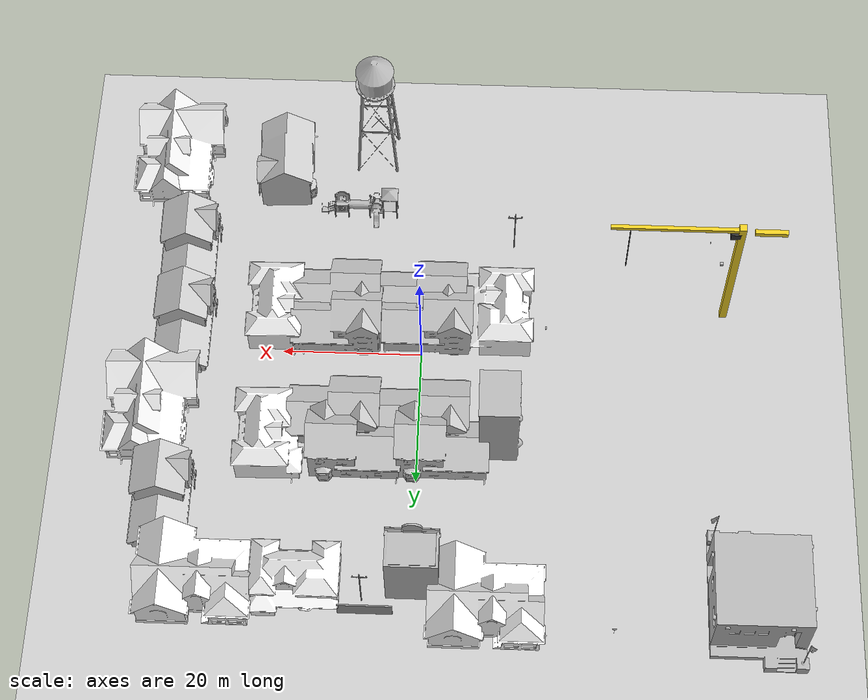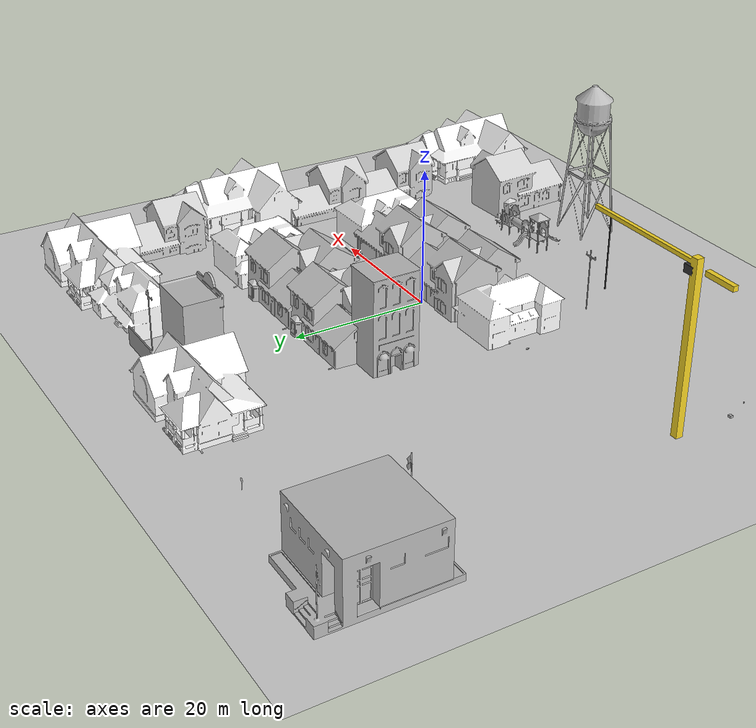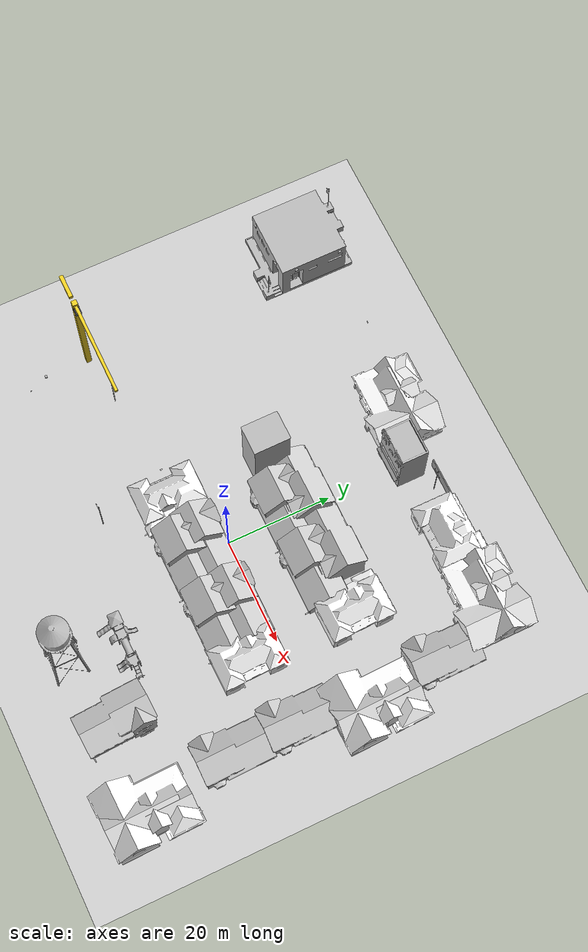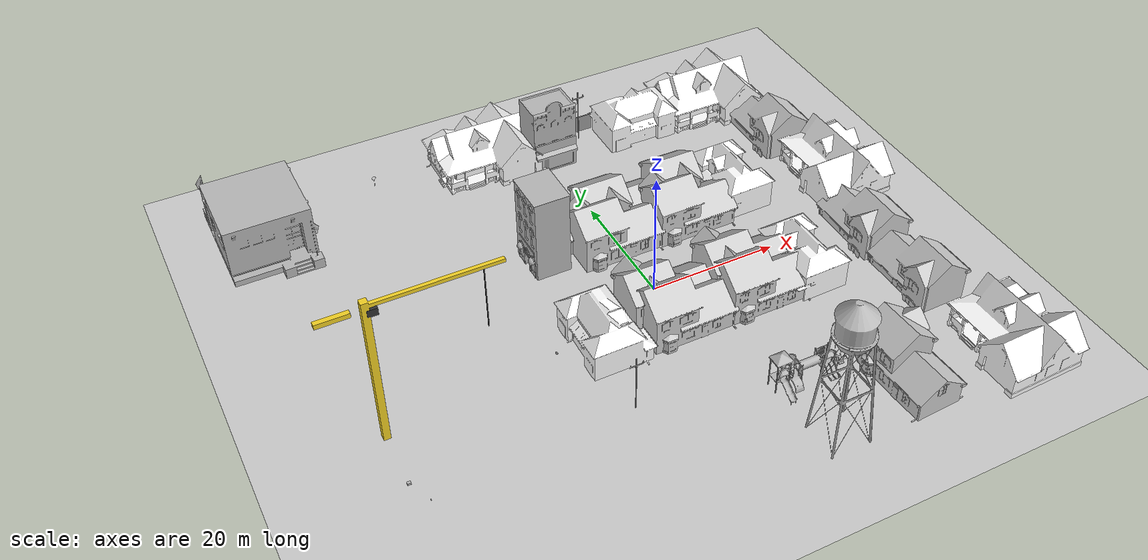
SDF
<sdf version="1.6">
 <world name="default">
  <light name="sun" type="directional">
   <pose>0 0 10 0 -0 0</pose>
   <diffuse>0.8 0.8 0.8 1</diffuse>
   <specular>0.2 0.2 0.2 1</specular>
   <attenuation>
    <range>1000</range>
    <constant>0.9</constant>
    <linear>0.01</linear>
    <quadratic>0.001</quadratic>
   </attenuation>
   <direction>-0.5 0.1 -0.9</direction>
  </light>
  <model name="ground_plane">
   <static>1</static>
   <link name="link">
    <collision name="collision">
     <geometry><plane><normal>0 0 1</normal><size>100 100</size></plane></geometry>
     <surface>
      <contact><collide_bitmask>65535</collide_bitmask></contact>
      <friction><ode><mu>100</mu><mu2>50</mu2></ode></friction>
     </surface>
    </collision>
    <visual name="visual">
     <cast_shadows>0</cast_shadows>
     <geometry><plane><normal>0 0 1</normal><size>100 100</size></plane></geometry>
     <material>
      <script><uri>file://media/materials/scripts/gazebo.material</uri><name>Gazebo/Grey</name></script>
     </material>
    </visual>
   </link>
  </model>
  <gravity>0 0 -9.8</gravity>
  <magnetic_field>6e-06 2.3e-05 -4.2e-05</magnetic_field>
  <atmosphere type="adiabatic"/>
  <physics name="default_physics" default="0" type="ode">
   <max_step_size>0.001</max_step_size>
   <real_time_factor>1</real_time_factor>
   <real_time_update_rate>1000</real_time_update_rate>
  </physics>
  <scene><ambient>0.4 0.4 0.4 1</ambient><background>0.7 0.7 0.7 1</background><shadows>1</shadows></scene>
  <audio><device>default</device></audio>
  <spherical_coordinates>
   <surface_model>EARTH_WGS84</surface_model>
   <latitude_deg>0</latitude_deg>
   <longitude_deg>0</longitude_deg>
   <elevation>0</elevation>
   <heading_deg>0</heading_deg>
  </spherical_coordinates>
  <model name="dev2">
   <model name="House 1">
    <static>1</static>
    <link name="link">
     <collision name="collision">
      <geometry><mesh><uri>model://house_1/meshes/house_1.dae</uri><scale>1.5 1.5 1.5</scale></mesh></geometry>
     </collision>
     <visual name="visual">
      <geometry><mesh><uri>model://house_1/meshes/house_1.dae</uri><scale>1.5 1.5 1.5</scale></mesh></geometry>
      <material>
       <script>
        <uri>model://house_1/materials/scripts</uri>
        <uri>model://house_1/materials/textures</uri>
        <name>House_1/Diffuse</name>
       </script>
       <shader type="normal_map_tangent_space"><normal_map>House_1_Normal.png</normal_map></shader>
      </material>
     </visual>
    </link>
    <pose>35.6283 -23.3265 -0 0 0 -1.54507</pose>
   </model>
   <model name="House 1_clone">
    <static>1</static>
    <link name="link">
     <collision name="collision">
      <geometry><mesh><uri>model://house_1/meshes/house_1.dae</uri><scale>1.5 1.5 1.5</scale></mesh></geometry>
     </collision>
     <visual name="visual">
      <geometry><mesh><uri>model://house_1/meshes/house_1.dae</uri><scale>1.5 1.5 1.5</scale></mesh></geometry>
      <material>
       <script>
        <uri>model://house_1/materials/scripts</uri>
        <uri>model://house_1/materials/textures</uri>
        <name>House_1/Diffuse</name>
       </script>
       <shader type="normal_map_tangent_space"><normal_map>House_1_Normal.png</normal_map></shader>
      </material>
     </visual>
    </link>
    <pose>35.5837 -66.3065 0 0 0 -1.54507</pose>
   </model>
   <model name="House 3">
    <static>1</static>
    <link name="link">
     <collision name="collision">
      <geometry><mesh><uri>model://house_3/meshes/house_3.dae</uri><scale>1.5 1.5 1.5</scale></mesh></geometry>
     </collision>
     <visual name="visual">
      <geometry><mesh><uri>model://house_3/meshes/house_3.dae</uri><scale>1.5 1.5 1.5</scale></mesh></geometry>
      <material>
       <script>
        <uri>model://house_3/materials/scripts</uri>
        <uri>model://house_3/materials/textures</uri>
        <uri>model://house_1/materials/textures</uri>
        <name>House_3/Diffuse</name>
       </script>
       <shader type="normal_map_tangent_space">
        <normal_map>model://house_1/materials/textures/House_1_Normal.png</normal_map>
       </shader>
      </material>
     </visual>
    </link>
    <pose>32.5908 -8.06289 -1.46227 0 -0 1.57153</pose>
   </model>
   <model name="House 3_clone">
    <static>1</static>
    <link name="link">
     <collision name="collision">
      <geometry><mesh><uri>model://house_3/meshes/house_3.dae</uri><scale>1.5 1.5 1.5</scale></mesh></geometry>
     </collision>
     <visual name="visual">
      <geometry><mesh><uri>model://house_3/meshes/house_3.dae</uri><scale>1.5 1.5 1.5</scale></mesh></geometry>
      <material>
       <script>
        <uri>model://house_3/materials/scripts</uri>
        <uri>model://house_3/materials/textures</uri>
        <uri>model://house_1/materials/textures</uri>
        <name>House_3/Diffuse</name>
       </script>
       <shader type="normal_map_tangent_space">
        <normal_map>model://house_1/materials/textures/House_1_Normal.png</normal_map>
       </shader>
      </material>
     </visual>
    </link>
    <pose>32.0612 -35.724 -1.46227 0 -0 1.57149</pose>
   </model>
   <model name="House 3_clone_0">
    <static>1</static>
    <link name="link">
     <collision name="collision">
      <geometry><mesh><uri>model://house_3/meshes/house_3.dae</uri><scale>1.5 1.5 1.5</scale></mesh></geometry>
     </collision>
     <visual name="visual">
      <geometry><mesh><uri>model://house_3/meshes/house_3.dae</uri><scale>1.5 1.5 1.5</scale></mesh></geometry>
      <material>
       <script>
        <uri>model://house_3/materials/scripts</uri>
        <uri>model://house_3/materials/textures</uri>
        <uri>model://house_1/materials/textures</uri>
        <name>House_3/Diffuse</name>
       </script>
       <shader type="normal_map_tangent_space">
        <normal_map>model://house_1/materials/textures/House_1_Normal.png</normal_map>
       </shader>
      </material>
     </visual>
    </link>
    <pose>32.3821 -48.4074 -1.46227 0 -0 1.58888</pose>
   </model>
   <model name="House 3_clone_0_clone">
    <static>1</static>
    <link name="link">
     <collision name="collision">
      <geometry><mesh><uri>model://house_3/meshes/house_3.dae</uri><scale>1.5 1.5 1.5</scale></mesh></geometry>
     </collision>
     <visual name="visual">
      <geometry><mesh><uri>model://house_3/meshes/house_3.dae</uri><scale>1.5 1.5 1.5</scale></mesh></geometry>
      <material>
       <script>
        <uri>model://house_3/materials/scripts</uri>
        <uri>model://house_3/materials/textures</uri>
        <uri>model://house_1/materials/textures</uri>
        <name>House_3/Diffuse</name>
       </script>
       <shader type="normal_map_tangent_space">
        <normal_map>model://house_1/materials/textures/House_1_Normal.png</normal_map>
       </shader>
      </material>
     </visual>
    </link>
    <pose>18.967 -65.2891 0 0 0 -1.51444</pose>
   </model>
   <model name="grey_wall">
    <static>1</static>
    <link name="link">
     <pose>0 0 1.4 0 -0 0</pose>
     <collision name="collision"><geometry><box><size>7.5 0.2 2.8</size></box></geometry></collision>
     <visual name="visual">
      <cast_shadows>0</cast_shadows>
      <geometry><box><size>7.5 0.2 2.8</size></box></geometry>
      <material>
       <script>
        <uri>model://grey_wall/materials/scripts</uri>
        <uri>model://grey_wall/materials/textures</uri>
        <name>vrc/grey_wall</name>
       </script>
      </material>
     </visual>
    </link>
    <pose>3.5126 6.38805 0 0 -0 0</pose>
   </model>
   <model name="playground">
    <static>1</static>
    <link name="link">
     <collision name="collision">
      <geometry><mesh><uri>model://playground/meshes/playground.dae</uri></mesh></geometry>
     </collision>
     <visual name="visual">
      <geometry><mesh><uri>model://playground/meshes/playground.dae</uri></mesh></geometry>
     </visual>
    </link>
    <pose>7.62744 -58.0299 0 0 -0 0</pose>
   </model>
   <model name="police_station">
    <static>1</static>
    <link name="link">
     <collision name="collision_main">
      <pose>0 0 4.28998 0 -0 0</pose>
      <geometry><box><size>13.037 13.037 8.57995</size></box></geometry>
     </collision>
     <collision name="collision_landing">
      <pose>0 0 0.464086 0 -0 0</pose>
      <geometry><box><size>13.037 16.2446 0.928173</size></box></geometry>
     </collision>
     <visual name="visual">
      <geometry><mesh><uri>model://police_station/meshes/police_station.dae</uri></mesh></geometry>
     </visual>
    </link>
    <pose>-49.527 3.12303 0 0 -0 0</pose>
   </model>
   <model name="salon">
    <static>1</static>
    <link name="link">
     <collision name="collision">
      <pose>0 0 5.69469 0 -0 0</pose>
      <geometry><box><size>7.21297 5.37875 11.3894</size></box></geometry>
     </collision>
     <visual name="visual">
      <pose>0 -0.903605 0 0 -0 0</pose>
      <geometry><mesh><uri>model://salon/meshes/salon.dae</uri></mesh></geometry>
     </visual>
    </link>
    <pose>-2.7693 1.46514 0 0 -0 0</pose>
   </model>
   <model name="stone_10_2_5_1cm">
    <link name="link">
     <pose>0 0 0.005 0 -0 0</pose>
     <inertial>
      <mass>0.0628</mass>
      <inertia>
       <ixx>3.79417e-06</ixx>
       <ixy>0</ixy>
       <ixz>0</ixz>
       <iyy>5.28567e-05</iyy>
       <iyz>0</iyz>
       <izz>5.56042e-05</izz>
      </inertia>
     </inertial>
     <collision name="collision">
      <geometry><box><size>0.1 0.025 0.01</size></box></geometry>
      <surface>
       <contact>
        <poissons_ratio>0.15</poissons_ratio>
        <elastic_modulus>8e+10</elastic_modulus>
        <ode><kp>100000</kp><kd>100</kd><max_vel>100</max_vel><min_depth>0.001</min_depth></ode>
       </contact>
       <friction>
        <torsional>
         <coefficient>1</coefficient>
         <use_patch_radius>0</use_patch_radius>
         <surface_radius>0.01</surface_radius>
        </torsional>
       </friction>
      </surface>
     </collision>
     <visual name="visual">
      <geometry><box><size>0.1 0.025 0.01</size></box></geometry>
      <material>
       <script><uri>file://media/materials/scripts/gazebo.material</uri><name>Gazebo/Grey</name></script>
      </material>
     </visual>
    </link>
    <pose>1.11383 -15.7892 0 0 -0 0</pose>
   </model>
   <model name="telephone_pole">
    <static>1</static>
    <link name="link">
     <collision name="collision_pole">
      <pose>0 0 4.572 0 -0 0</pose>
      <geometry><cylinder><radius>0.0779475</radius><length>9.144</length></cylinder></geometry>
     </collision>
     <collision name="collision_cross">
      <pose>0 -0.098806 8.04836 0 -0 0</pose>
      <geometry><box><size>2.11606 0.041763 0.177806</size></box></geometry>
     </collision>
     <visual name="visual">
      <geometry><mesh><uri>model://telephone_pole/meshes/telephone_pole.dae</uri></mesh></geometry>
     </visual>
    </link>
    <pose>-15.599 -52.1918 0 0 -0 0</pose>
   </model>
   <model name="tower_crane">
    <static>1</static>
    <link name="link">
     <collision name="collision">
      <geometry><mesh><uri>model://tower_crane/meshes/tower_crane.dae</uri></mesh></geometry>
     </collision>
     <visual name="visual">
      <geometry><mesh><uri>model://tower_crane/meshes/tower_crane.dae</uri></mesh></geometry>
     </visual>
    </link>
    <pose>-46.3547 -41.7693 0 0 -0 0</pose>
   </model>
   <model name="water_tower">
    <static>1</static>
    <link name="link">
     <collision name="collision">
      <geometry><mesh><uri>model://water_tower/meshes/water_tower.dae</uri></mesh></geometry>
     </collision>
     <visual name="visual">
      <geometry><mesh><uri>model://water_tower/meshes/water_tower.dae</uri></mesh></geometry>
     </visual>
    </link>
    <pose>5.36456 -68.1812 0 0 -0 0</pose>
   </model>
   <static>1</static>
   <pose>2.54819 33.4009 0 0 -0 0</pose>
  </model>
  <model name="drill">
   <link name="link">
    <inertial>
     <pose>-0.00637 -0.008 0.13254 0 -0 0</pose>
     <inertia>
      <ixx>0.0133113</ixx>
      <ixy>-0.00030365</ixy>
      <ixz>-0.00034148</ixz>
      <iyy>0.0115766</iyy>
      <iyz>0.00088073</iyz>
      <izz>0.00378028</izz>
     </inertia>
     <mass>1.50252</mass>
    </inertial>
    <collision name="collision">
     <pose>0 0 -0.09 0 -0 0</pose>
     <geometry><mesh><uri>model://cordless_drill/meshes/cordless_drill.stl</uri></mesh></geometry>
     <surface><contact><ode><max_vel>0.1</max_vel><min_depth>0.001</min_depth></ode></contact></surface>
    </collision>
    <visual name="visual">
     <pose>0 0 -0.09 0 -0 0</pose>
     <geometry><mesh><uri>model://cordless_drill/meshes/cordless_drill.dae</uri></mesh></geometry>
    </visual>
   </link>
   <pose>-42.4271 -20.4719 -0.002169 -0.000188 -0.003374 -0.000531</pose>
  </model>
  <model name="House 1_0">
   <static>1</static>
   <link name="link">
    <collision name="collision">
     <geometry><mesh><uri>model://house_1/meshes/house_1.dae</uri><scale>1.5 1.5 1.5</scale></mesh></geometry>
    </collision>
    <visual name="visual">
     <geometry><mesh><uri>model://house_1/meshes/house_1.dae</uri><scale>1.5 1.5 1.5</scale></mesh></geometry>
     <material>
      <script>
       <uri>model://house_1/materials/scripts</uri>
       <uri>model://house_1/materials/textures</uri>
       <name>House_1/Diffuse</name>
      </script>
      <shader type="normal_map_tangent_space"><normal_map>House_1_Normal.png</normal_map></shader>
     </material>
    </visual>
   </link>
   <pose>29.5568 36.4483 0 0 -0 0</pose>
  </model>
  <model name="House 2">
   <static>1</static>
   <link name="link">
    <collision name="collision">
     <geometry><mesh><uri>model://house_2/meshes/house_2.dae</uri><scale>1.5 1.5 1.5</scale></mesh></geometry>
    </collision>
    <visual name="visual">
     <geometry><mesh><uri>model://house_2/meshes/house_2.dae</uri><scale>1.5 1.5 1.5</scale></mesh></geometry>
     <material>
      <script>
       <uri>model://house_2/materials/scripts</uri>
       <uri>model://house_2/materials/textures</uri>
       <uri>model://house_1/materials/textures</uri>
       <name>House_2/Diffuse</name>
      </script>
      <shader type="normal_map_tangent_space">
       <normal_map>model://house_1/materials/textures/House_1_Normal.png</normal_map>
      </shader>
     </material>
    </visual>
   </link>
   <pose>14.6679 35.4567 0 0 -0 0</pose>
  </model>
  <model name="House 2_0">
   <static>1</static>
   <link name="link">
    <collision name="collision">
     <geometry><mesh><uri>model://house_2/meshes/house_2.dae</uri><scale>1.5 1.5 1.5</scale></mesh></geometry>
    </collision>
    <visual name="visual">
     <geometry><mesh><uri>model://house_2/meshes/house_2.dae</uri><scale>1.5 1.5 1.5</scale></mesh></geometry>
     <material>
      <script>
       <uri>model://house_2/materials/scripts</uri>
       <uri>model://house_2/materials/textures</uri>
       <uri>model://house_1/materials/textures</uri>
       <name>House_2/Diffuse</name>
      </script>
      <shader type="normal_map_tangent_space">
       <normal_map>model://house_1/materials/textures/House_1_Normal.png</normal_map>
      </shader>
     </material>
    </visual>
   </link>
   <pose>21.6161 13.4202 0 0 -0 1.58859</pose>
  </model>
  <model name="House 3_0">
   <static>1</static>
   <link name="link">
    <collision name="collision">
     <geometry><mesh><uri>model://house_3/meshes/house_3.dae</uri><scale>1.5 1.5 1.5</scale></mesh></geometry>
    </collision>
    <visual name="visual">
     <geometry><mesh><uri>model://house_3/meshes/house_3.dae</uri><scale>1.5 1.5 1.5</scale></mesh></geometry>
     <material>
      <script>
       <uri>model://house_3/materials/scripts</uri>
       <uri>model://house_3/materials/textures</uri>
       <uri>model://house_1/materials/textures</uri>
       <name>House_3/Diffuse</name>
      </script>
      <shader type="normal_map_tangent_space">
       <normal_map>model://house_1/materials/textures/House_1_Normal.png</normal_map>
      </shader>
     </material>
    </visual>
   </link>
   <pose>12.3075 11.0057 0 0 -0 0</pose>
  </model>
  <model name="House 3_0_clone">
   <static>1</static>
   <link name="link">
    <collision name="collision">
     <geometry><mesh><uri>model://house_3/meshes/house_3.dae</uri><scale>1.5 1.5 1.5</scale></mesh></geometry>
    </collision>
    <visual name="visual">
     <geometry><mesh><uri>model://house_3/meshes/house_3.dae</uri><scale>1.5 1.5 1.5</scale></mesh></geometry>
     <material>
      <script>
       <uri>model://house_3/materials/scripts</uri>
       <uri>model://house_3/materials/textures</uri>
       <uri>model://house_1/materials/textures</uri>
       <name>House_3/Diffuse</name>
      </script>
      <shader type="normal_map_tangent_space">
       <normal_map>model://house_1/materials/textures/House_1_Normal.png</normal_map>
      </shader>
     </material>
    </visual>
   </link>
   <pose>-0.1843 11.1524 0 0 -0 0</pose>
  </model>
  <model name="House 3_0_clone_0">
   <static>1</static>
   <link name="link">
    <collision name="collision">
     <geometry><mesh><uri>model://house_3/meshes/house_3.dae</uri><scale>1.5 1.5 1.5</scale></mesh></geometry>
    </collision>
    <visual name="visual">
     <geometry><mesh><uri>model://house_3/meshes/house_3.dae</uri><scale>1.5 1.5 1.5</scale></mesh></geometry>
     <material>
      <script>
       <uri>model://house_3/materials/scripts</uri>
       <uri>model://house_3/materials/textures</uri>
       <uri>model://house_1/materials/textures</uri>
       <name>House_3/Diffuse</name>
      </script>
      <shader type="normal_map_tangent_space">
       <normal_map>model://house_1/materials/textures/House_1_Normal.png</normal_map>
      </shader>
     </material>
    </visual>
   </link>
   <pose>8.21185 16.2293 0 -0.035898 -3.5e-05 3.14061</pose>
  </model>
  <model name="House 3_0_clone_0_clone">
   <static>1</static>
   <link name="link">
    <collision name="collision">
     <geometry><mesh><uri>model://house_3/meshes/house_3.dae</uri><scale>1.5 1.5 1.5</scale></mesh></geometry>
    </collision>
    <visual name="visual">
     <geometry><mesh><uri>model://house_3/meshes/house_3.dae</uri><scale>1.5 1.5 1.5</scale></mesh></geometry>
     <material>
      <script>
       <uri>model://house_3/materials/scripts</uri>
       <uri>model://house_3/materials/textures</uri>
       <uri>model://house_1/materials/textures</uri>
       <name>House_3/Diffuse</name>
      </script>
      <shader type="normal_map_tangent_space">
       <normal_map>model://house_1/materials/textures/House_1_Normal.png</normal_map>
      </shader>
     </material>
    </visual>
   </link>
   <pose>-4.08887 15.975 0 -0.035898 -3.5e-05 3.14061</pose>
  </model>
  <model name="ball_bearing">
   <link name="link">
    <pose>0 0 0.003 0 -0 0</pose>
    <inertial>
     <mass>0.0011</mass>
     <inertia>
      <ixx>3.96e-09</ixx>
      <ixy>0</ixy>
      <ixz>0</ixz>
      <iyy>3.96e-09</iyy>
      <iyz>0</iyz>
      <izz>3.96e-09</izz>
     </inertia>
    </inertial>
    <collision name="collision">
     <geometry><sphere><radius>0.003</radius></sphere></geometry>
     <surface>
      <contact>
       <poissons_ratio>0.305</poissons_ratio>
       <elastic_modulus>2e+11</elastic_modulus>
       <ode><kp>100000</kp><kd>100</kd><max_vel>100</max_vel><min_depth>0.001</min_depth></ode>
      </contact>
      <friction>
       <torsional>
        <coefficient>1</coefficient>
        <use_patch_radius>0</use_patch_radius>
        <surface_radius>0.01</surface_radius>
       </torsional>
      </friction>
     </surface>
    </collision>
    <visual name="visual">
     <geometry><sphere><radius>0.003</radius></sphere></geometry>
     <material>
      <script><uri>file://media/materials/scripts/gazebo.material</uri><name>Gazebo/Grey</name></script>
     </material>
    </visual>
    <velocity_decay><linear>0</linear><angular>0.005</angular></velocity_decay>
   </link>
   <pose>-35.0039 2.84542 -0.001 0 -0 0</pose>
  </model>
  <model name="House 3_0_clone_clone">
   <static>1</static>
   <link name="link">
    <collision name="collision">
     <geometry><mesh><uri>model://house_3/meshes/house_3.dae</uri><scale>1.5 1.5 1.5</scale></mesh></geometry>
    </collision>
    <visual name="visual">
     <geometry><mesh><uri>model://house_3/meshes/house_3.dae</uri><scale>1.5 1.5 1.5</scale></mesh></geometry>
     <material>
      <script>
       <uri>model://house_3/materials/scripts</uri>
       <uri>model://house_3/materials/textures</uri>
       <uri>model://house_1/materials/textures</uri>
       <name>House_3/Diffuse</name>
      </script>
      <shader type="normal_map_tangent_space">
       <normal_map>model://house_1/materials/textures/House_1_Normal.png</normal_map>
      </shader>
     </material>
    </visual>
   </link>
   <pose>12.79 -3.7465 0 0 -0 0</pose>
  </model>
  <model name="House 3_0_clone_clone_0">
   <static>1</static>
   <link name="link">
    <collision name="collision">
     <geometry><mesh><uri>model://house_3/meshes/house_3.dae</uri><scale>1.5 1.5 1.5</scale></mesh></geometry>
    </collision>
    <visual name="visual">
     <geometry><mesh><uri>model://house_3/meshes/house_3.dae</uri><scale>1.5 1.5 1.5</scale></mesh></geometry>
     <material>
      <script>
       <uri>model://house_3/materials/scripts</uri>
       <uri>model://house_3/materials/textures</uri>
       <uri>model://house_1/materials/textures</uri>
       <name>House_3/Diffuse</name>
      </script>
      <shader type="normal_map_tangent_space">
       <normal_map>model://house_1/materials/textures/House_1_Normal.png</normal_map>
      </shader>
     </material>
    </visual>
   </link>
   <pose>-0.267455 -4.19971 0 0 -0 0</pose>
  </model>
  <model name="House 2_0_clone">
   <static>1</static>
   <link name="link">
    <collision name="collision">
     <geometry><mesh><uri>model://house_2/meshes/house_2.dae</uri><scale>1.5 1.5 1.5</scale></mesh></geometry>
    </collision>
    <visual name="visual">
     <geometry><mesh><uri>model://house_2/meshes/house_2.dae</uri><scale>1.5 1.5 1.5</scale></mesh></geometry>
     <material>
      <script>
       <uri>model://house_2/materials/scripts</uri>
       <uri>model://house_2/materials/textures</uri>
       <uri>model://house_1/materials/textures</uri>
       <name>House_2/Diffuse</name>
      </script>
      <shader type="normal_map_tangent_space">
       <normal_map>model://house_1/materials/textures/House_1_Normal.png</normal_map>
      </shader>
     </material>
    </visual>
   </link>
   <pose>21.3505 -7.13755 0 0 -0 1.58859</pose>
  </model>
  <model name="House 3_0_clone_1">
   <static>1</static>
   <link name="link">
    <collision name="collision">
     <geometry><mesh><uri>model://house_3/meshes/house_3.dae</uri><scale>1.5 1.5 1.5</scale></mesh></geometry>
    </collision>
    <visual name="visual">
     <geometry><mesh><uri>model://house_3/meshes/house_3.dae</uri><scale>1.5 1.5 1.5</scale></mesh></geometry>
     <material>
      <script>
       <uri>model://house_3/materials/scripts</uri>
       <uri>model://house_3/materials/textures</uri>
       <uri>model://house_1/materials/textures</uri>
       <name>House_3/Diffuse</name>
      </script>
      <shader type="normal_map_tangent_space">
       <normal_map>model://house_1/materials/textures/House_1_Normal.png</normal_map>
      </shader>
     </material>
    </visual>
   </link>
   <pose>13.1623 -8.12292 0 0 -0 0</pose>
  </model>
  <model name="House 3_0_clone_2">
   <static>1</static>
   <link name="link">
    <collision name="collision">
     <geometry><mesh><uri>model://house_3/meshes/house_3.dae</uri><scale>1.5 1.5 1.5</scale></mesh></geometry>
    </collision>
    <visual name="visual">
     <geometry><mesh><uri>model://house_3/meshes/house_3.dae</uri><scale>1.5 1.5 1.5</scale></mesh></geometry>
     <material>
      <script>
       <uri>model://house_3/materials/scripts</uri>
       <uri>model://house_3/materials/textures</uri>
       <uri>model://house_1/materials/textures</uri>
       <name>House_3/Diffuse</name>
      </script>
      <shader type="normal_map_tangent_space">
       <normal_map>model://house_1/materials/textures/House_1_Normal.png</normal_map>
      </shader>
     </material>
    </visual>
   </link>
   <pose>0.753487 -8.12292 0 0 -0 0</pose>
  </model>
  <model name="Stop Sign_0">
   <static>1</static>
   <link name="link">
    <collision name="collision">
     <geometry><mesh><uri>model://stop_sign/meshes/stop_sign.dae</uri></mesh></geometry>
    </collision>
    <visual name="visual">
     <geometry><mesh><uri>model://stop_sign/meshes/stop_sign.dae</uri></mesh></geometry>
     <material>
      <script>
       <uri>model://stop_sign/materials/scripts</uri>
       <uri>model://stop_sign/materials/textures</uri>
       <name>StopSign/Diffuse</name>
      </script>
     </material>
    </visual>
   </link>
   <pose>-27.6625 41.5337 0 0 -0 0</pose>
  </model>
  <model name="cardboard_box">
   <pose>-43.9427 -16.8708 0.149 0 -0 0</pose>
   <link name="link">
    <inertial>
     <mass>2</mass>
     <inertia>
      <ixx>0.0416667</ixx>
      <ixy>0</ixy>
      <ixz>0</ixz>
      <iyy>0.0566667</iyy>
      <iyz>0</iyz>
      <izz>0.0683333</izz>
     </inertia>
    </inertial>
    <collision name="collision">
     <geometry><box><size>0.5 0.4 0.3</size></box></geometry>
     <surface>
      <friction><ode><mu>1</mu><mu2>1</mu2></ode></friction>
      <contact><ode><kp>1e+07</kp><kd>1</kd><min_depth>0.001</min_depth><max_vel>0.1</max_vel></ode></contact>
     </surface>
    </collision>
    <visual name="visual">
     <pose>0 0 -0.15 0 -0 0</pose>
     <geometry>
      <mesh><uri>model://cardboard_box/meshes/cardboard_box.dae</uri><scale>1.25932 1.00745 0.755591</scale></mesh>
     </geometry>
    </visual>
   </link>
  </model>
  <model name="telephone_pole_0">
   <static>1</static>
   <link name="link">
    <collision name="collision_pole">
     <pose>0 0 4.572 0 -0 0</pose>
     <geometry><cylinder><radius>0.0779475</radius><length>9.144</length></cylinder></geometry>
    </collision>
    <collision name="collision_cross">
     <pose>0 -0.098806 8.04836 0 -0 0</pose>
     <geometry><box><size>2.11606 0.041763 0.177806</size></box></geometry>
    </collision>
    <visual name="visual">
     <geometry><mesh><uri>model://telephone_pole/meshes/telephone_pole.dae</uri></mesh></geometry>
    </visual>
   </link>
   <pose>6.62021 37.9517 0 0 -0 0</pose>
  </model>
  <model name="law_office">
   <static>1</static>
   <link name="link">
    <collision name="collision">
     <pose>0 0 6.96244 0 -0 0</pose>
     <geometry><box><size>6.84401 5.43165 13.9249</size></box></geometry>
    </collision>
    <visual name="visual">
     <geometry><mesh><uri>model://law_office/meshes/law_office.dae</uri></mesh></geometry>
    </visual>
   </link>
   <pose>-11.3723 12.8673 0 0 4.4e-05 -1.56642</pose>
  </model>
  <model name="House 1_0_clone">
   <static>1</static>
   <link name="link">
    <collision name="collision">
     <geometry><mesh><uri>model://house_1/meshes/house_1.dae</uri><scale>1.5 1.5 1.5</scale></mesh></geometry>
    </collision>
    <visual name="visual">
     <geometry><mesh><uri>model://house_1/meshes/house_1.dae</uri><scale>1.5 1.5 1.5</scale></mesh></geometry>
     <material>
      <script>
       <uri>model://house_1/materials/scripts</uri>
       <uri>model://house_1/materials/textures</uri>
       <name>House_1/Diffuse</name>
      </script>
      <shader type="normal_map_tangent_space"><normal_map>House_1_Normal.png</normal_map></shader>
     </material>
    </visual>
   </link>
   <pose>-9.94886 38.6702 0 0 -0 0</pose>
  </model>
  <model name="cinder_block_2">
   <link name="link">
    <inertial>
     <pose>0 0 0.071438 0 -0 0</pose>
     <mass>5</mass>
     <inertia>
      <ixx>0.06908</ixx>
      <ixy>0</ixy>
      <iyy>0.028705</iyy>
      <ixz>0</ixz>
      <iyz>0</iyz>
      <izz>0.073708</izz>
     </inertia>
    </inertial>
    <visual name="visual">
     <geometry><mesh><uri>model://cinder_block_2/meshes/cinder_block.dae</uri></mesh></geometry>
    </visual>
    <collision name="top">
     <pose>0 0 0.130175 0 -0 0</pose>
     <geometry><box><size>0.19368 0.396875 0.0254</size></box></geometry>
     <surface>
      <contact><ode><max_vel>0.1</max_vel><min_depth>0.001</min_depth></ode></contact>
      <friction><ode><mu>1</mu><mu2>1</mu2></ode></friction>
     </surface>
    </collision>
    <collision name="bottom">
     <pose>0 0 0.0127 0 -0 0</pose>
     <geometry><box><size>0.19368 0.396875 0.0254</size></box></geometry>
     <surface>
      <contact><ode><max_vel>0.1</max_vel><min_depth>0.001</min_depth></ode></contact>
      <friction><ode><mu>1</mu><mu2>1</mu2></ode></friction>
     </surface>
    </collision>
    <collision name="left">
     <pose>0 -0.185738 0.071438 0 -0 0</pose>
     <geometry><box><size>0.19368 0.0254 0.092075</size></box></geometry>
     <surface>
      <contact><ode><max_vel>0.1</max_vel><min_depth>0.001</min_depth></ode></contact>
      <friction><ode><mu>1</mu><mu2>1</mu2></ode></friction>
     </surface>
    </collision>
    <collision name="right">
     <pose>0 0.185738 0.071438 0 -0 0</pose>
     <geometry><box><size>0.19368 0.0254 0.092075</size></box></geometry>
     <surface>
      <contact><ode><max_vel>0.1</max_vel><min_depth>0.001</min_depth></ode></contact>
      <friction><ode><mu>1</mu><mu2>1</mu2></ode></friction>
     </surface>
    </collision>
    <collision name="middle">
     <pose>0 0 0.071438 0 -0 0</pose>
     <geometry><box><size>0.19368 0.0254 0.092075</size></box></geometry>
     <surface>
      <contact><ode><max_vel>0.1</max_vel><min_depth>0.001</min_depth></ode></contact>
      <friction><ode><mu>1</mu><mu2>1</mu2></ode></friction>
     </surface>
    </collision>
   </link>
   <pose>-18.0184 -5.12978 -0.00028 0.001677 -0.001064 0.01509</pose>
  </model>
  <model name="House 2_1">
   <static>1</static>
   <link name="link">
    <collision name="collision">
     <geometry><mesh><uri>model://house_2/meshes/house_2.dae</uri><scale>1.5 1.5 1.5</scale></mesh></geometry>
    </collision>
    <visual name="visual">
     <geometry><mesh><uri>model://house_2/meshes/house_2.dae</uri><scale>1.5 1.5 1.5</scale></mesh></geometry>
     <material>
      <script>
       <uri>model://house_2/materials/scripts</uri>
       <uri>model://house_2/materials/textures</uri>
       <uri>model://house_1/materials/textures</uri>
       <name>House_2/Diffuse</name>
      </script>
      <shader type="normal_map_tangent_space">
       <normal_map>model://house_1/materials/textures/House_1_Normal.png</normal_map>
      </shader>
     </material>
    </visual>
   </link>
   <pose>-11.9201 -5.37365 0 0 0 -1.56925</pose>
  </model>
 </world>
</sdf>
